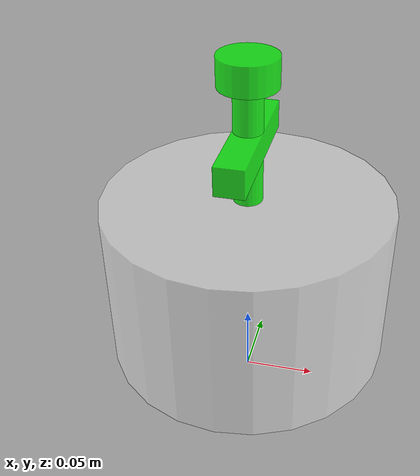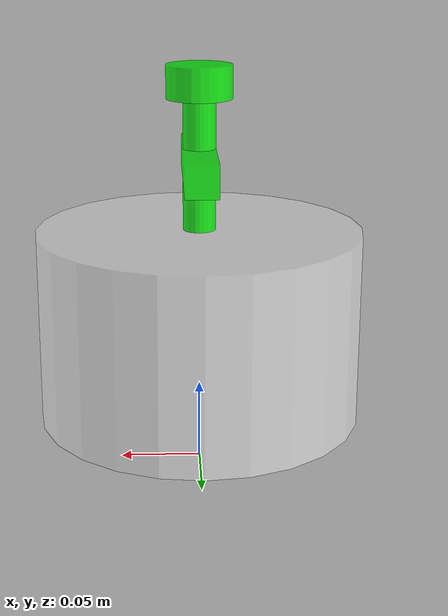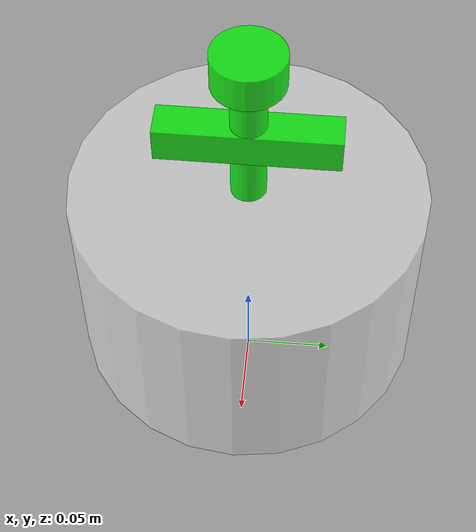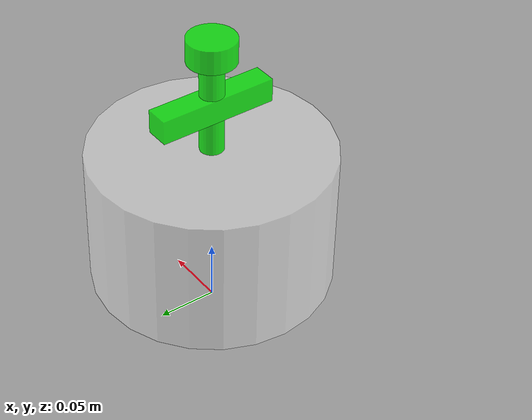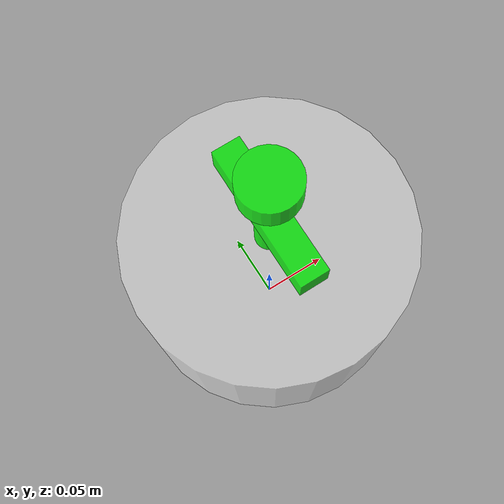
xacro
<?xml version="1.0"?>
<robot xmlns:xacro="http://www.ros.org/wiki/xacro" name="ins_bot">
  <xacro:include filename="$(find robo_build)/urdf/ins_bot/base.urdf.xacro"/>

  <!-- 传感器组件 -->
  <xacro:include filename="$(find robo_build)/urdf/ins_bot/sensor/imu.urdf.xacro"/>
  <xacro:include filename="$(find robo_build)/urdf/ins_bot/sensor/laser.urdf.xacro"/>
  <xacro:include filename="$(find robo_build)/urdf/ins_bot/sensor/camera.urdf.xacro"/>

  <xacro:base_xacro length="0.12" radius="0.1"/> <!-- 传感器 -->

  <xacro:imu_xacro xyz="0 0 0.02"/>
  <xacro:laser_xacro xyz="0 0 0.10"/>
  <xacro:camera_xacro xyz="0.10 0 0.075"/>
</robot>

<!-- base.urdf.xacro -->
<robot xmlns:xacro="http://www.ros.org/wiki/xacro">
  <xacro:macro name="base_xacro" params="length radius">
    <link name="base_footprint"/>

    <joint name="base_joint" type="fixed">
      <parent link="base_footprint"/>
      <child link="base_link"/>
      <origin xyz="0.0 0.0 ${length / 2.0 + 0.032 - 0.001}" rpy="0 0 0"/>
    </joint>

    <link name="base_link">
      <visual>
        <origin xyz="0 0 0" rpy="0 0 0"/>
        <geometry>
          <cylinder length="${length}" radius="${radius}"/>
        </geometry>
        <material name="white">
          <color rgba="1.0 1.0 1.0 0.5"/>
        </material>
      </visual>
    </link>
  </xacro:macro>
</robot>

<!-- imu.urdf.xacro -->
<robot xmlns:xacro="http://www.ros.org/wiki/xacro">
  <xacro:macro name="imu_xacro" params="xyz">
    <link name="imu_link">
      <visual>
        <origin xyz="0 0 0" rpy="0 0 0"/>
        <geometry>
          <box size="0.02 0.02 0.02"/>
        </geometry>
        <material name="black">
          <color rgba="0 0 0 0.8"/>
        </material>
      </visual>
    </link>

    <joint name="imu_joint" type="fixed">
      <parent link="base_link"/>
      <child link="imu_link"/>
      <origin xyz="${xyz}"/>
    </joint>
  </xacro:macro>
</robot>

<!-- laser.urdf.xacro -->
<robot xmlns:xacro="http://www.ros.org/wiki/xacro">
  <xacro:macro name="laser_xacro" params="xyz">
    <!-- #===========雷达支推杆========== -->
    <link name="laser_cylinder_link">
      <visual>
        <origin xyz="0 0 0" rpy="0 0 0"/>
        <geometry>
          <cylinder length="0.10" radius="0.01"/>
        </geometry>
        <material name="green">
          <color rgba="0 1 0 0.8"/>
        </material>
      </visual>
    </link>
    <joint name="laser_cylinder_joint" type="fixed">
      <parent link="base_link"/>
      <child link="laser_cylinder_link"/>
      <origin xyz="${xyz}"/>
    </joint>

    <!-- 另一个激光器模块 -->
    <link name="laser_link">
      <visual>
        <origin xyz="0 0 0" rpy="0 0 0"/>
        <geometry>
          <cylinder length="0.02" radius="0.02"/>
        </geometry>
        <material name="green">
          <color rgba="0 1 0 0.8"/>
        </material>
      </visual>
    </link>
    <joint name="laser_joint" type="fixed">
      <parent link="laser_cylinder_link"/>
      <child link="laser_link"/>
      <origin xyz="0 0 0.05"/>
    </joint>
  </xacro:macro>
</robot>

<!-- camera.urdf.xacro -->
<robot xmlns:xacro="http://www.ros.org/wiki/xacro">
  <xacro:macro name="camera_xacro" params="xyz">
    <!-- 相机模块 -->
    <link name="camera_link">
      <visual>
        <origin xyz="0 0 0" rpy="0 0 0"/>
        <geometry>
          <box size="0.02 0.1 0.02"/>
        </geometry>
        <material name="green">
          <color rgba="0 1 0 0.8"/>
        </material>
      </visual>
    </link>
    <joint name="camera_joint" type="fixed">
      <parent link="base_link"/>
      <child link="camera_link"/>
      <origin xyz="0 0 0.10" rpy="0 0 0"/>
    </joint>
  </xacro:macro>
</robot>
